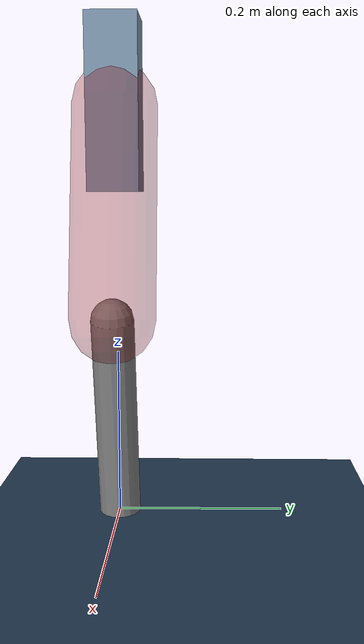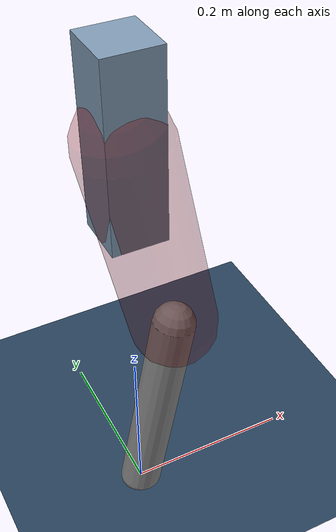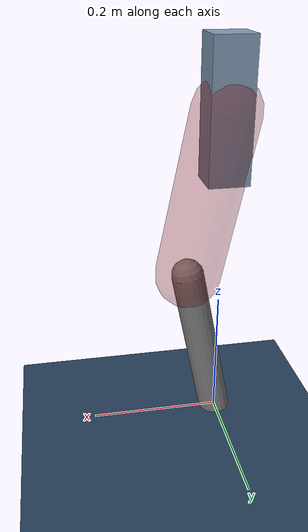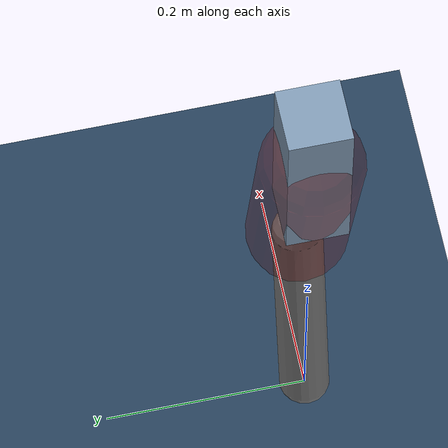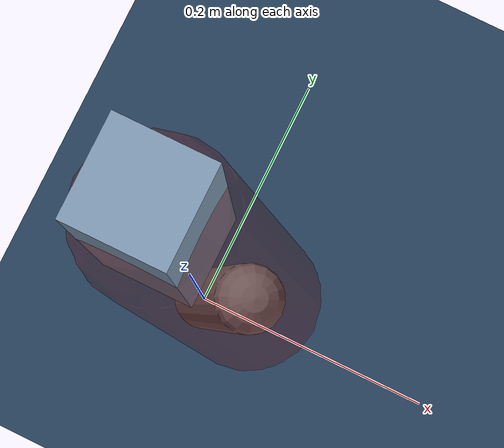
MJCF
<mujoco model="Hopper2D">
	<compiler inertiafromgeom="true" angle="radian" />
	<option timestep="0.001" integrator="implicit" cone="elliptic" solver="Newton" tolerance="1e-10" />

	<default>
		<geom contype="1" conaffinity="1" condim="3" friction="2 0.005 0.0001" solref="0.005 1" />
		<joint limited="true" damping="0.1" />
	</default>

	<asset>
		<texture name="skybox" type="skybox" builtin="gradient" rgb1=".4 .6 .8" rgb2="0 0 0" width="800" height="800" />
		<texture name="grid" type="2d" builtin="checker" rgb1=".1 .2 .3" rgb2=".2 .3 .4" width="300" height="300" mark="edge" markrgb=".2 .3 .4" />
		<material name="ground" texture="grid" texrepeat="1 1" texuniform="true" reflectance="0.1" />
		<material name="leg" rgba="0.5 0.6 0.7 1" />
	</asset>

	<worldbody>

		<geom name="floor" type="plane" size="5 5 0.25" material="ground" />

		<light directional="false" diffuse="0.8 0.8 0.8" specular="0.3 0.3 0.3" pos="0 0 2" dir="0 0 -1" />
		<light mode="targetbodycom" target="base" directional="false" diffuse="0.8 0.8 0.8" specular="0.3 0.3 0.3" pos="0 0 2" dir="0 0 -1" />

		<camera name="fixed" pos="0 -2 1" xyaxes="1 0 0 0 0 1" />
		<camera name="tracking" mode="trackcom" pos="0 -3 1" />

		<body name="root" pos="0 0 0.49311453535255856">
			<joint name="slide_x" type="slide" axis="1 0 0" range="-100 100" />
			<joint name="slide_z" type="slide" axis="0 0 1" range="0 10" />

			<body name="base" pos="0 0 0">
				<geom name="torso" type="box" size="0.03 0.03 0.1" mass="3.242" material="leg" />

				<body name="link1" pos="0 0 0" euler="0 1.3699887930891095 0">
					<joint type="hinge" axis="0 -1 0" pos="0 0 0" name="hinge1" limited="true" range="-3.14 3.14" stiffness="0" damping="0.1" />
					<geom name="thigh" type="capsule" fromto="0 0 0 0.25019906090819233 0 0" size="0.05" rgba="0.5 0 0 0.3" mass="0.8569175583613001" />

					<body name="link2" pos="0.25019906090819233 0 0" euler="0 0.3994293337801181 0">
						<joint type="hinge" axis="0 -1 0" pos="0 0 0" name="hinge2" limited="true" range="-3.14 3.14" stiffness="0" damping="0.1" />
						<geom name="shank" type="capsule" fromto="0 0 0 0.25291547444436624 0 0" size="0.025" mass="0.444932379555493" />

					</body>
				</body>
			</body>
		</body>
	</worldbody>

	<actuator>
		<motor name="torque1" joint="hinge1" ctrlrange="-80.72706813963053 80.72706813963053" ctrllimited="true" gear="1" />
		<motor name="torque2" joint="hinge2" ctrlrange="-132.77032657848892 132.77032657848892" ctrllimited="true" gear="1" />
	</actuator>
</mujoco>
